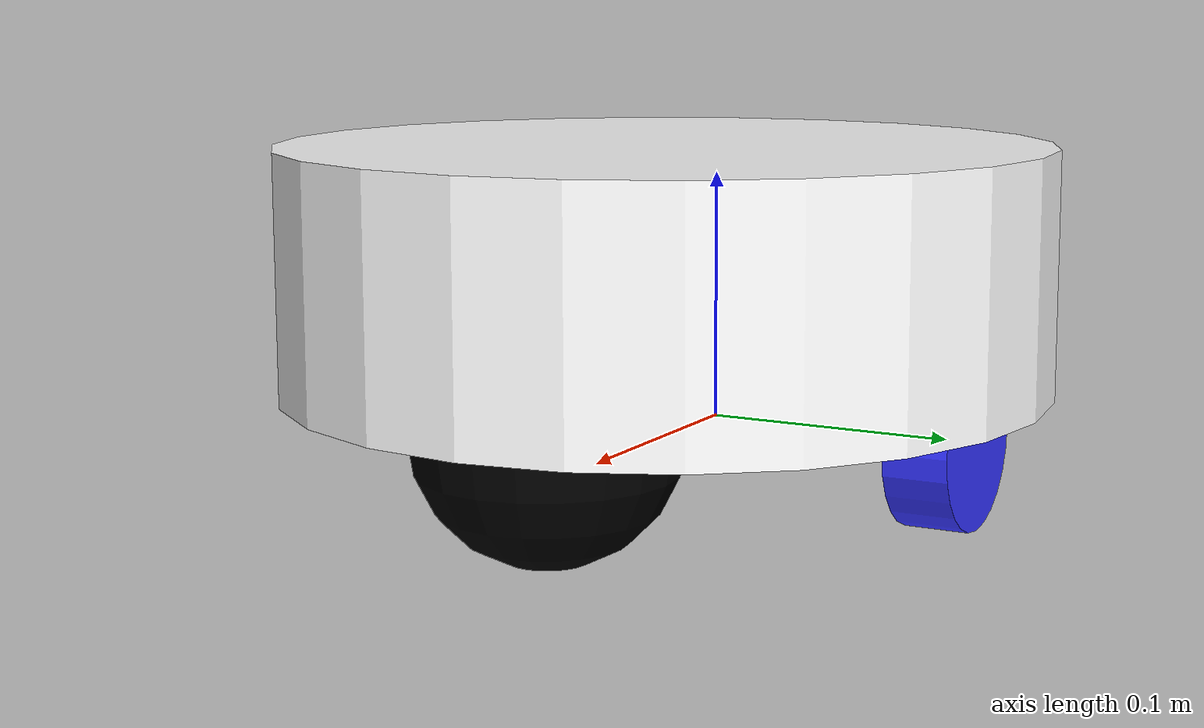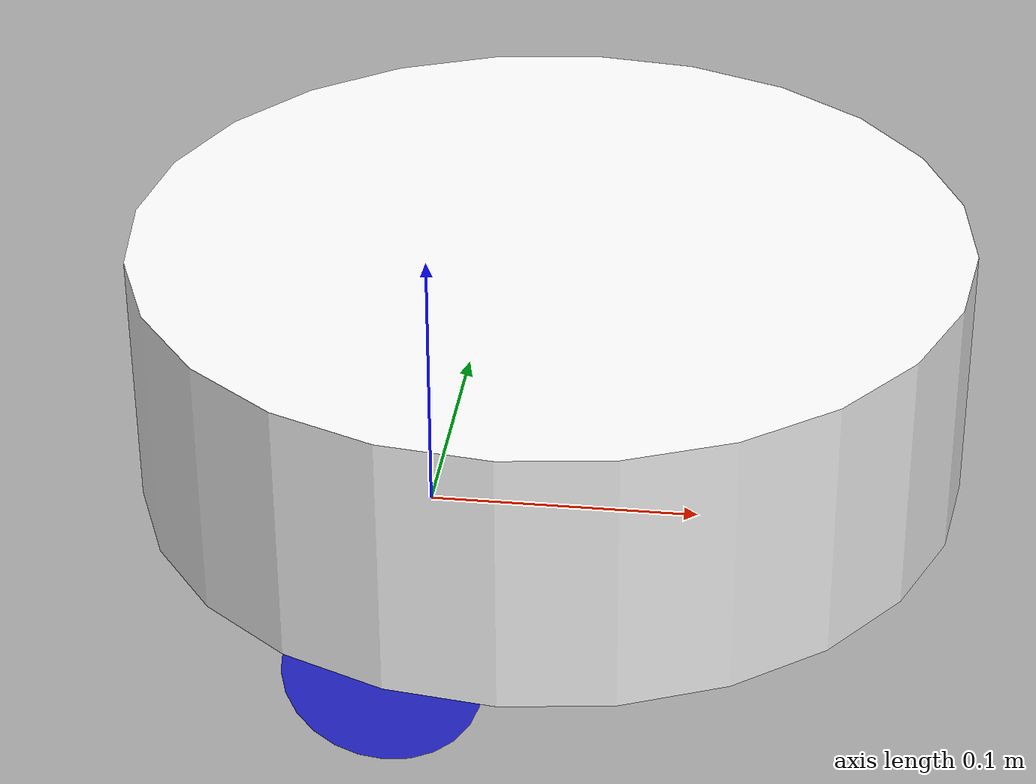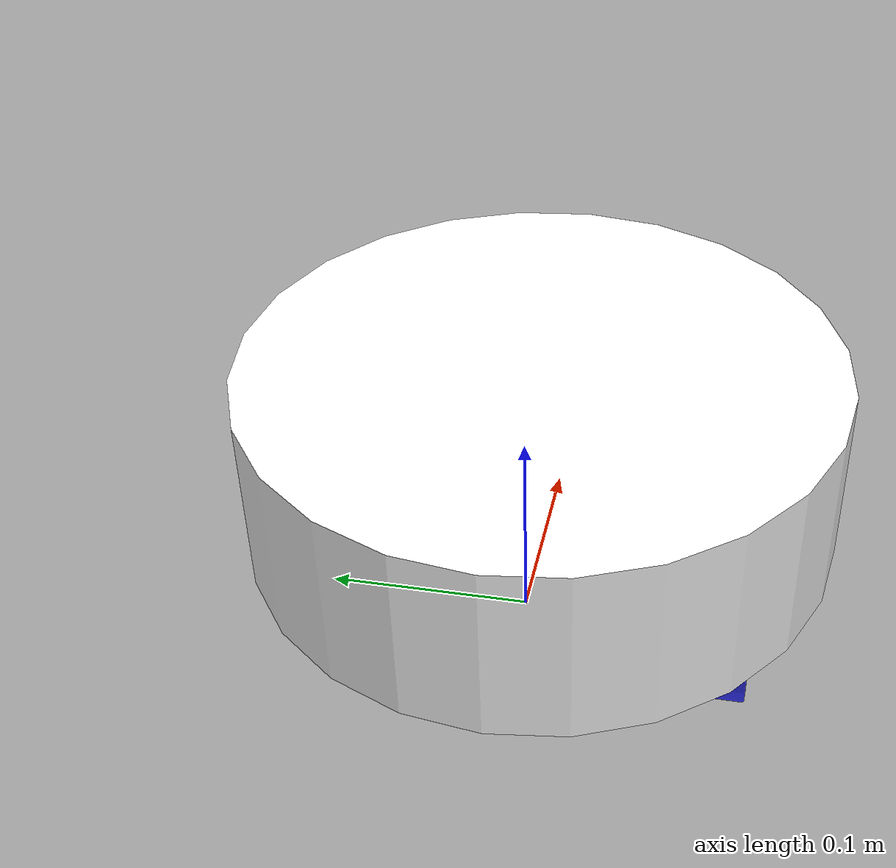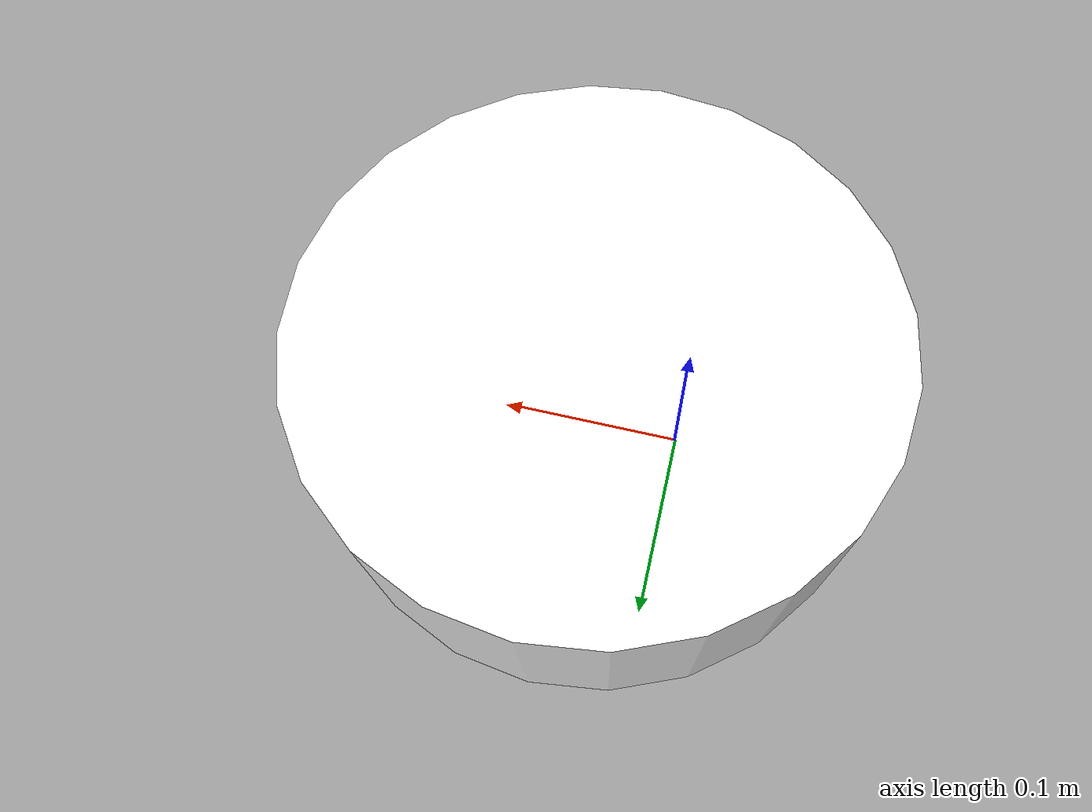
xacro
<?xml version="1.0"?>
<robot xmlns:xacro="http://www.ros.org/wiki/xacro">

    <xacro:include filename='inertial_macros.xacro'/>

    <material name="white">
        <color rgba="1 1 1 1"/>
    </material>

    <material name="orenge">
        <color rgba="1 0.3 0.1 1"/>
    </material>

    <material name="blue">
        <color rgba="0.2 0.2 1 1"/>
    </material>

    <material name="black">
        <color rgba="0 0 0 1"/>
    </material>

    <material name="red">
        <color rgba="1 0 0 1"/>
    </material>

    <link name="base_link">

    </link>

    <!-- The base link will sit at the center of the two drive wheels(like the center of the drive rod) -->
    <!-- Here the chassis origin will be the back-bottom-center. ie: behind the drive wheels -->
    <joint name="chassis_joint" type="fixed">
        <parent link="base_link"/>
        <child link="chassis_link"/>
        <!-- The base_link is -0.1 in x to the chassis_link -->
        <origin xyz="-0.105 0.0 0.02"/>
    </joint>

    <link name="chassis_link">
        <visual>
            <origin xyz= "0.15 0 0.0475"/>
            <geometry>
                <cylinder radius="0.15" length="0.095"/>
            </geometry>
            <material name="white"/>
        </visual>
        <collision>
            <origin xyz= "0.15 0 0.0475"/>
            <geometry>
                <cylinder radius="0.15" length="0.095"/>
            </geometry>
            <material name="white"/>
        </collision>
        <xacro:inertial_cylinder mass='0.2' length='0.095' radius='0.15'>
            <origin xyz='0.15 0 0.0475' rpy='0 0 0'/>
        </xacro:inertial_cylinder>
        <gazebo reference="chassis_link">
            <material>Gazebo/white</material>
        </gazebo>

    </link>

    <!-- Left Wheel Link -->
    <joint name="left_wheel_joint" type="continuous">
        <parent link="base_link"/>
        <child link="left_wheel"/>
        <!-- Origin 0.1 away on Y, The origin of a cylinder will default be oriented on Z access. So we roll the cylinder
        90degrees around the X axix. that is roll. -->
        <origin xyz="0 0.1 0" rpy="-${pi/2} 0.0 0.0"/>
        <!-- axis is rotating around the Z axis. When we have a positive motions on the wheel -->
        <axis xyz="0.0 0.0 1"/>
    </joint>

    <link name="left_wheel">
        <visual>
            <geometry>
                <cylinder radius="0.035" length="0.026"/>
            </geometry>
            <material name="blue"/>
        </visual>
        <collision>
            <geometry>
                <cylinder radius="0.035" length="0.026"/>
            </geometry>
            <material name="blue"/>
        </collision>
        <xacro:inertial_cylinder mass='0.1' length='0.026' radius='0.035'>
            <origin xyz='0 0 0' rpy='0 0 0'/>
        </xacro:inertial_cylinder>
    </link>
    <!-- adding a gazebo referebnce to the material/color -->
    <gazebo reference="left_wheel">
        <material>Gazebo/Blue</material>
    </gazebo>

    <!-- Right Wheel Link -->
    <joint name="right_wheel_joint" type="continuous">
        <parent link="base_link"/>
        <child link="right_wheel"/>
        <origin xyz="0 -0.1 0" rpy="${pi/2} 0.0 0.0"/>
        <!-- axis is rotating around the -Z axis. When we have a positive motions on the wheel -->
        <axis xyz="0.0 0.0 -1"/>
    </joint>

    <link name="right_wheel">
        <visual>
            <geometry>
                <cylinder radius="0.035" length="0.026"/>
            </geometry>
            <material name="blue"/>
        </visual>
        <collision>
            <geometry>
                <cylinder radius="0.035" length="0.026"/>
            </geometry>
            <material name="blue"/>
        </collision>
        <xacro:inertial_cylinder mass='0.1' length='0.026' radius='0.035'>
            <origin xyz='0 0 0' rpy='0 0 0'/>
        </xacro:inertial_cylinder>
    </link>
    <!-- adding a gazebo referebnce to the material/color -->
    <gazebo reference="right_wheel">
        <material>Gazebo/Blue</material>
    </gazebo>

    <!-- Caster Wheel -->
    <joint name="caster_wheel_joint" type="fixed">
        <parent link="chassis_link"/>
        <child link="caster_wheel"/>
        <origin xyz="0.24 0 0"/>
    </joint>

    <link name="caster_wheel">
        <visual>
            <geometry>
                <sphere radius="0.05"/>
            </geometry>
            <material name="black"/>
        </visual>
        <collision>
            <geometry>
                <sphere radius="0.05"/>
            </geometry>
            <material name="black"/>
        </collision>
        <xacro:inertial_sphere mass='0.1' radius='0.05'>
            <origin xyz='0 0 0' rpy='0 0 0'/>
        </xacro:inertial_sphere>
    </link>
    <!-- adding a gazebo referebnce to the material/color -->
    <gazebo reference="caster_wheel">
        <material>Gazebo/Black</material>

        <!-- Setting the friction of the caster wheel to a minimum value -->
        <mu1 value="0.0001"/>
        <mu2 value="0.0001"/>

    </gazebo>

</robot>
